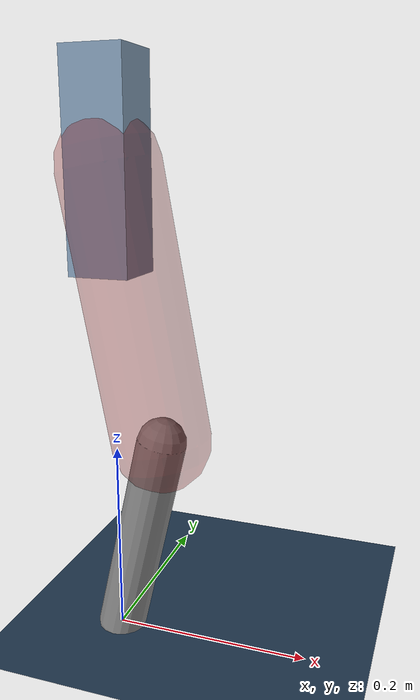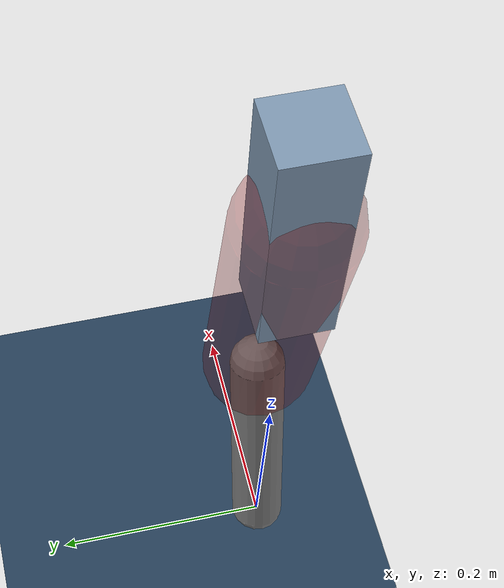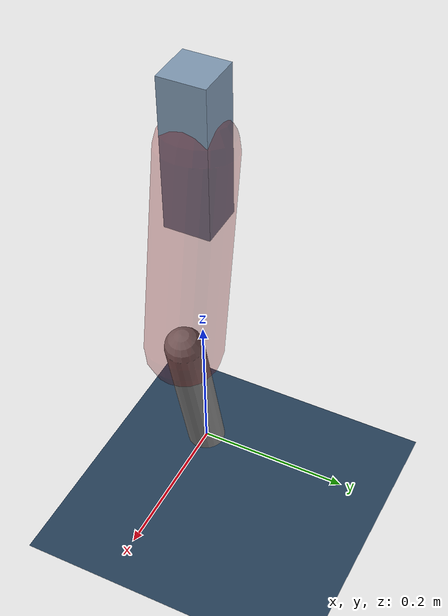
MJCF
<mujoco model="Hopper2D">
	<compiler inertiafromgeom="true" angle="radian" />
	<option timestep="0.001" integrator="implicit" cone="elliptic" solver="Newton" tolerance="1e-10" />

	<default>
		<geom contype="1" conaffinity="1" condim="3" friction="2 0.005 0.0001" solref="0.005 1" />
		<joint limited="true" damping="0.1" />
	</default>

	<asset>
		<texture name="skybox" type="skybox" builtin="gradient" rgb1=".4 .6 .8" rgb2="0 0 0" width="800" height="800" />
		<texture name="grid" type="2d" builtin="checker" rgb1=".1 .2 .3" rgb2=".2 .3 .4" width="300" height="300" mark="edge" markrgb=".2 .3 .4" />
		<material name="ground" texture="grid" texrepeat="1 1" texuniform="true" reflectance="0.1" />
		<material name="leg" rgba="0.5 0.6 0.7 1" />
	</asset>

	<worldbody>

		<geom name="floor" type="plane" size="5 5 0.25" material="ground" />

		<light directional="false" diffuse="0.8 0.8 0.8" specular="0.3 0.3 0.3" pos="0 0 2" dir="0 0 -1" />
		<light mode="targetbodycom" target="base" directional="false" diffuse="0.8 0.8 0.8" specular="0.3 0.3 0.3" pos="0 0 2" dir="0 0 -1" />

		<camera name="fixed" pos="0 -2 1" xyaxes="1 0 0 0 0 1" />
		<camera name="tracking" mode="trackcom" pos="0 -3 1" />

		<body name="root" pos="0 0 0.4780103050900196">
			<joint name="slide_x" type="slide" axis="1 0 0" range="-100 100" />
			<joint name="slide_z" type="slide" axis="0 0 1" range="0 10" />

			<body name="base" pos="0 0 0">
				<geom name="torso" type="box" size="0.03 0.03 0.1" mass="1.6949999999999998" material="leg" />

				<body name="link1" pos="0 0 0" euler="0 1.387986788682703 0">
					<joint type="hinge" axis="0 -1 0" pos="0 0 0" name="hinge1" limited="true" range="-3.14 3.14" stiffness="0" damping="0.1" />
					<geom name="thigh" type="capsule" fromto="0 0 0 0.26885927525415404 0 0" size="0.05" rgba="0.5 0 0 0.3" mass="0.9056341156608004" />

					<body name="link2" pos="0.26885927525415404 0 0" euler="0 0.40772878025598486 0">
						<joint type="hinge" axis="0 -1 0" pos="0 0 0" name="hinge2" limited="true" range="-3.14 3.14" stiffness="0" damping="0.1" />
						<geom name="shank" type="capsule" fromto="0 0 0 0.21915102983586562 0 0" size="0.025" mass="0.4169359268522791" />

					</body>
				</body>
			</body>
		</body>
	</worldbody>

	<actuator>
		<motor name="torque1" joint="hinge1" ctrlrange="-38.35279533412236 38.35279533412236" ctrllimited="true" gear="1" />
		<motor name="torque2" joint="hinge2" ctrlrange="-29.20667234919525 29.20667234919525" ctrllimited="true" gear="1" />
	</actuator>
</mujoco>
